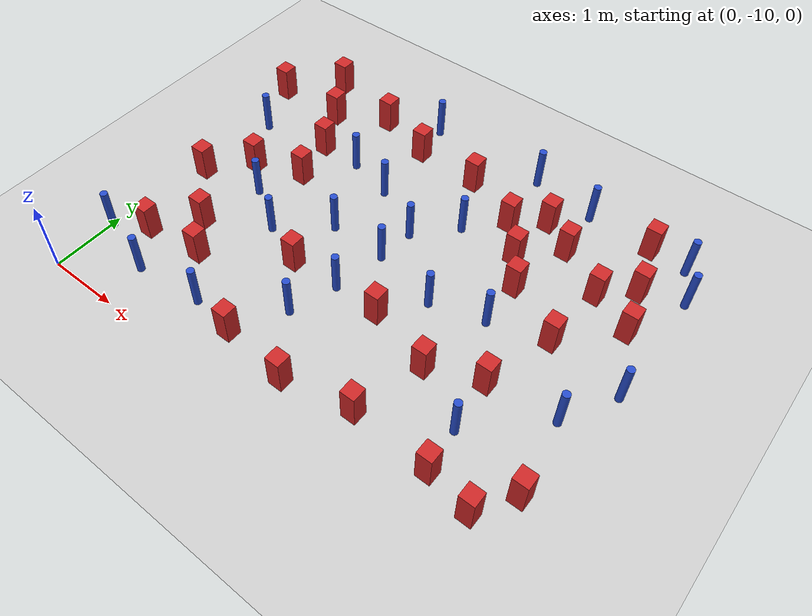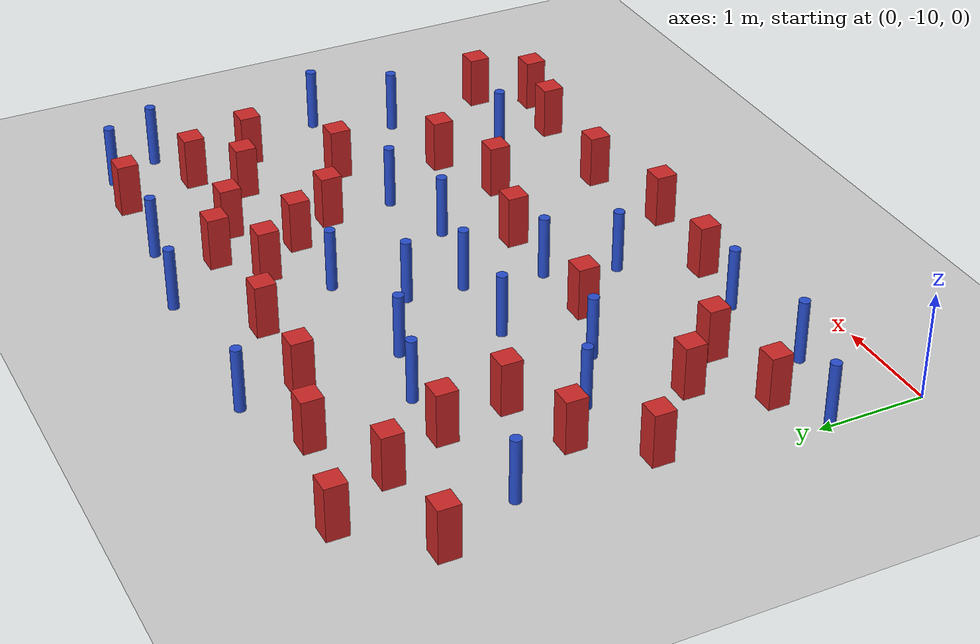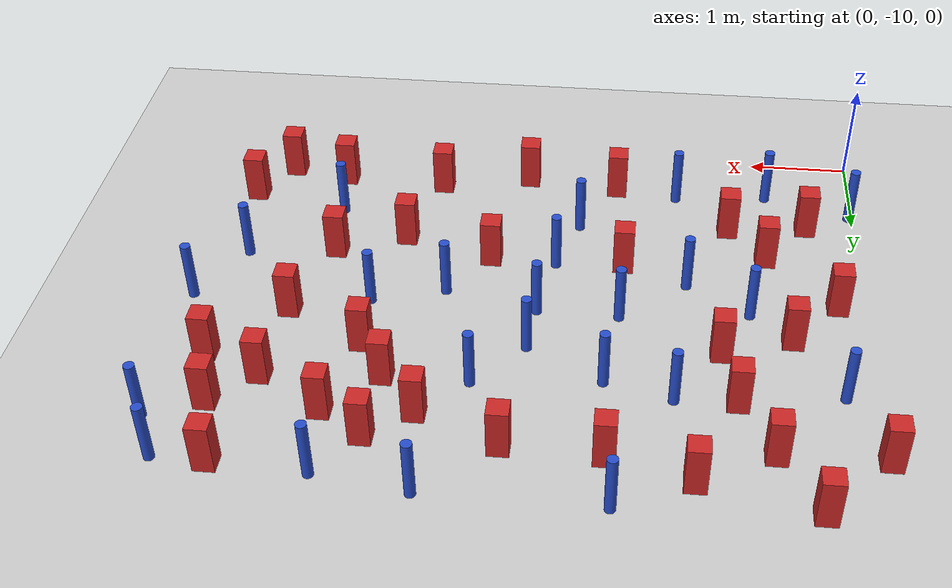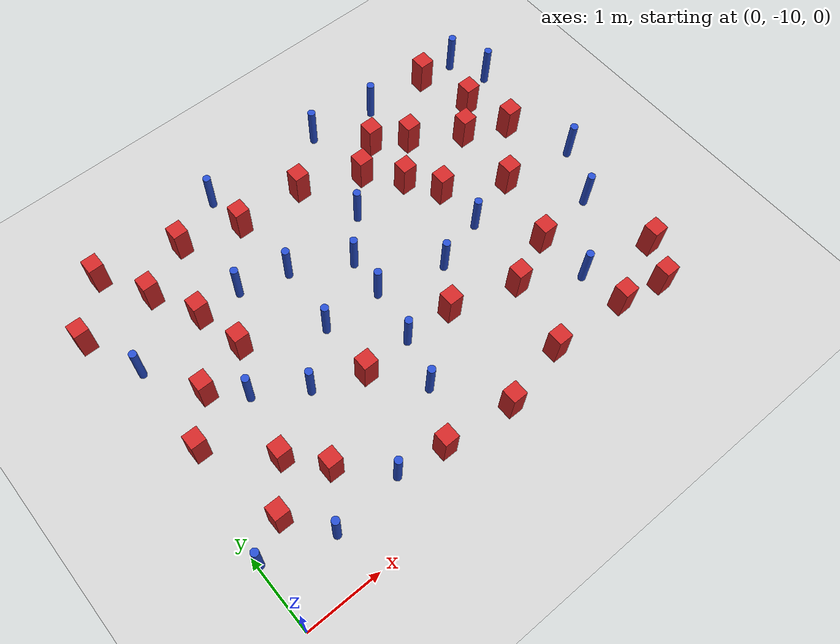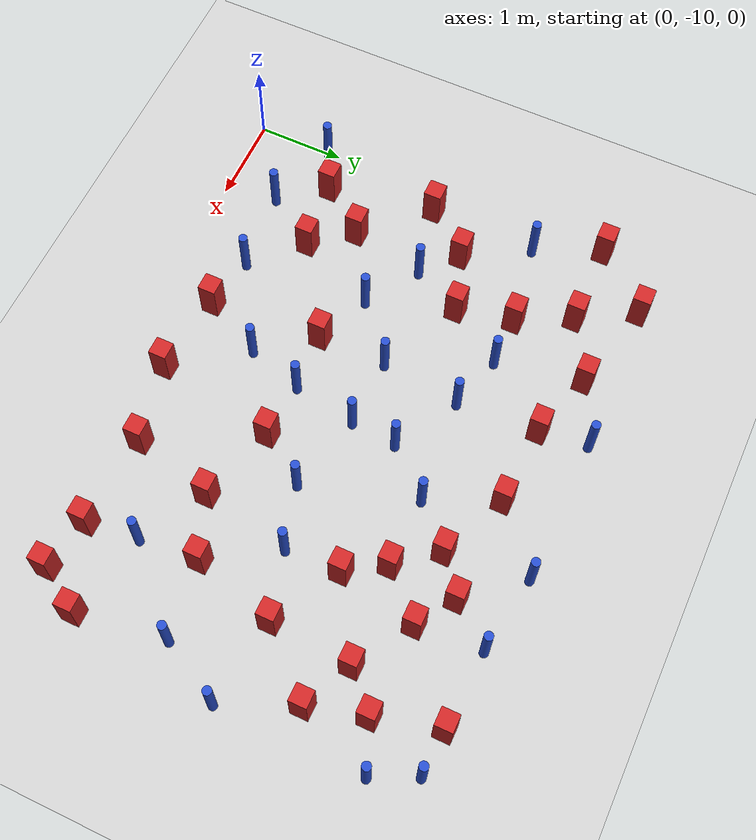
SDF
<sdf version="1.6">
 <world name="default">
  <model name="ground_plane">
   <static>1</static>
   <link name="link">
    <collision name="collision">
     <geometry><plane><normal>0 0 1</normal><size>100 100</size></plane></geometry>
     <surface><friction><ode><mu>100</mu><mu2>50</mu2></ode></friction></surface>
    </collision>
    <visual name="visual">
     <cast_shadows>0</cast_shadows>
     <geometry><plane><normal>0 0 1</normal><size>100 100</size></plane></geometry>
     <material>
      <ambient>1.0 1.0 1.0 1.0</ambient>
      <diffuse>0.8 0.8 0.8 1.0</diffuse>
      <specular>0.01 0.01 0.01 1.000000</specular>
     </material>
    </visual>
   </link>
  </model>
  <model name="square_post_obstacle6">
   <static>true</static>
   <pose>1.29093593183 -8.78116304104 1.91545236811e-07 -7.35059704564e-06 1.12565212e-07 2.39332434364e-05</pose>
   <link name="link">
    <pose>0 0 0.25 0 -0 0</pose>
    <inertial>
     <mass>100</mass>
     <inertia>
      <ixx>0.166667</ixx>
      <ixy>0</ixy>
      <ixz>0</ixz>
      <iyy>0.166667</iyy>
      <iyz>0</iyz>
      <izz>0.166667</izz>
     </inertia>
    </inertial>
    <collision name="collision"><geometry><box><size>.2 .2 .5</size></box></geometry></collision>
    <visual name="visual">
     <geometry><box><size>.2 .2 .5</size></box></geometry>
     <material>
      <script><name>Gazebo/Red</name><uri>file://media/materials/scripts/gazebo.material</uri></script>
     </material>
    </visual>
   </link>
  </model>
  <model name="pole_obstacle5">
   <static>true</static>
   <pose>4.72717917194 -7.37181326376 7.38925637345e-09 -8.47170692796e-08 1.24976764786e-08 -1.74513093032e-07</pose>
   <link name="link">
    <pose>0 0 0.3 0 -0 0</pose>
    <inertial>
     <mass>1</mass>
     <inertia><ixx>0.145833</ixx><ixy>0</ixy><ixz>0</ixz><iyy>0.145833</iyy><iyz>0</iyz><izz>0.125</izz></inertia>
    </inertial>
    <collision name="collision">
     <geometry><cylinder><radius>0.05</radius><length>.6</length></cylinder></geometry>
    </collision>
    <visual name="visual">
     <geometry><cylinder><radius>0.05</radius><length>.6</length></cylinder></geometry>
     <material>
      <script><name>Gazebo/Blue</name><uri>file://media/materials/scripts/gazebo.material</uri></script>
     </material>
    </visual>
   </link>
  </model>
  <model name="square_post_obstacle8">
   <static>true</static>
   <pose>4.5278132848 -8.37382198587 1.91545236811e-07 -7.35059704564e-06 1.12565212e-07 2.39332434364e-05</pose>
   <link name="link">
    <pose>0 0 0.25 0 -0 0</pose>
    <inertial>
     <mass>100</mass>
     <inertia>
      <ixx>0.166667</ixx>
      <ixy>0</ixy>
      <ixz>0</ixz>
      <iyy>0.166667</iyy>
      <iyz>0</iyz>
      <izz>0.166667</izz>
     </inertia>
    </inertial>
    <collision name="collision"><geometry><box><size>.2 .2 .5</size></box></geometry></collision>
    <visual name="visual">
     <geometry><box><size>.2 .2 .5</size></box></geometry>
     <material>
      <script><name>Gazebo/Red</name><uri>file://media/materials/scripts/gazebo.material</uri></script>
     </material>
    </visual>
   </link>
  </model>
  <model name="square_post_obstacle11">
   <static>true</static>
   <pose>4.90303084375 -5.84005324019 1.91545236811e-07 -7.35059704564e-06 1.12565212e-07 2.39332434364e-05</pose>
   <link name="link">
    <pose>0 0 0.25 0 -0 0</pose>
    <inertial>
     <mass>100</mass>
     <inertia>
      <ixx>0.166667</ixx>
      <ixy>0</ixy>
      <ixz>0</ixz>
      <iyy>0.166667</iyy>
      <iyz>0</iyz>
      <izz>0.166667</izz>
     </inertia>
    </inertial>
    <collision name="collision"><geometry><box><size>.2 .2 .5</size></box></geometry></collision>
    <visual name="visual">
     <geometry><box><size>.2 .2 .5</size></box></geometry>
     <material>
      <script><name>Gazebo/Red</name><uri>file://media/materials/scripts/gazebo.material</uri></script>
     </material>
    </visual>
   </link>
  </model>
  <model name="square_post_obstacle16">
   <static>true</static>
   <pose>3.64107070523 -8.11280772102 1.91545236811e-07 -7.35059704564e-06 1.12565212e-07 2.39332434364e-05</pose>
   <link name="link">
    <pose>0 0 0.25 0 -0 0</pose>
    <inertial>
     <mass>100</mass>
     <inertia>
      <ixx>0.166667</ixx>
      <ixy>0</ixy>
      <ixz>0</ixz>
      <iyy>0.166667</iyy>
      <iyz>0</iyz>
      <izz>0.166667</izz>
     </inertia>
    </inertial>
    <collision name="collision"><geometry><box><size>.2 .2 .5</size></box></geometry></collision>
    <visual name="visual">
     <geometry><box><size>.2 .2 .5</size></box></geometry>
     <material>
      <script><name>Gazebo/Red</name><uri>file://media/materials/scripts/gazebo.material</uri></script>
     </material>
    </visual>
   </link>
  </model>
  <model name="square_post_obstacle25">
   <static>true</static>
   <pose>5.53937418971 -6.23226143775 1.91545236811e-07 -7.35059704564e-06 1.12565212e-07 2.39332434364e-05</pose>
   <link name="link">
    <pose>0 0 0.25 0 -0 0</pose>
    <inertial>
     <mass>100</mass>
     <inertia>
      <ixx>0.166667</ixx>
      <ixy>0</ixy>
      <ixz>0</ixz>
      <iyy>0.166667</iyy>
      <iyz>0</iyz>
      <izz>0.166667</izz>
     </inertia>
    </inertial>
    <collision name="collision"><geometry><box><size>.2 .2 .5</size></box></geometry></collision>
    <visual name="visual">
     <geometry><box><size>.2 .2 .5</size></box></geometry>
     <material>
      <script><name>Gazebo/Red</name><uri>file://media/materials/scripts/gazebo.material</uri></script>
     </material>
    </visual>
   </link>
  </model>
  <model name="square_post_obstacle33">
   <static>true</static>
   <pose>2.44459764118 -9.39622125563 1.91545236811e-07 -7.35059704564e-06 1.12565212e-07 2.39332434364e-05</pose>
   <link name="link">
    <pose>0 0 0.25 0 -0 0</pose>
    <inertial>
     <mass>100</mass>
     <inertia>
      <ixx>0.166667</ixx>
      <ixy>0</ixy>
      <ixz>0</ixz>
      <iyy>0.166667</iyy>
      <iyz>0</iyz>
      <izz>0.166667</izz>
     </inertia>
    </inertial>
    <collision name="collision"><geometry><box><size>.2 .2 .5</size></box></geometry></collision>
    <visual name="visual">
     <geometry><box><size>.2 .2 .5</size></box></geometry>
     <material>
      <script><name>Gazebo/Red</name><uri>file://media/materials/scripts/gazebo.material</uri></script>
     </material>
    </visual>
   </link>
  </model>
  <model name="pole_obstacle39">
   <static>true</static>
   <pose>0.277764339624 -6.41978023083 7.38925637345e-09 -8.47170692799e-08 1.24976765101e-08 -1.74513093014e-07</pose>
   <link name="link">
    <pose>0 0 0.3 0 -0 0</pose>
    <inertial>
     <mass>1</mass>
     <inertia><ixx>0.145833</ixx><ixy>0</ixy><ixz>0</ixz><iyy>0.145833</iyy><iyz>0</iyz><izz>0.125</izz></inertia>
    </inertial>
    <collision name="collision">
     <geometry><cylinder><radius>0.05</radius><length>.6</length></cylinder></geometry>
    </collision>
    <visual name="visual">
     <geometry><cylinder><radius>0.05</radius><length>.6</length></cylinder></geometry>
     <material>
      <script><name>Gazebo/Blue</name><uri>file://media/materials/scripts/gazebo.material</uri></script>
     </material>
    </visual>
   </link>
  </model>
  <model name="pole_obstacle43">
   <static>true</static>
   <pose>3.12505444501 -7.35914126723 7.38925637345e-09 -8.47170692798e-08 1.24976765033e-08 -1.74513093019e-07</pose>
   <link name="link">
    <pose>0 0 0.3 0 -0 0</pose>
    <inertial>
     <mass>1</mass>
     <inertia><ixx>0.145833</ixx><ixy>0</ixy><ixz>0</ixz><iyy>0.145833</iyy><iyz>0</iyz><izz>0.125</izz></inertia>
    </inertial>
    <collision name="collision">
     <geometry><cylinder><radius>0.05</radius><length>.6</length></cylinder></geometry>
    </collision>
    <visual name="visual">
     <geometry><cylinder><radius>0.05</radius><length>.6</length></cylinder></geometry>
     <material>
      <script><name>Gazebo/Blue</name><uri>file://media/materials/scripts/gazebo.material</uri></script>
     </material>
    </visual>
   </link>
  </model>
  <model name="square_post_obstacle42">
   <static>true</static>
   <pose>6.22523209229 -8.99552981772 1.91545236811e-07 -7.35059704564e-06 1.12565212e-07 2.39332434364e-05</pose>
   <link name="link">
    <pose>0 0 0.25 0 -0 0</pose>
    <inertial>
     <mass>100</mass>
     <inertia>
      <ixx>0.166667</ixx>
      <ixy>0</ixy>
      <ixz>0</ixz>
      <iyy>0.166667</iyy>
      <iyz>0</iyz>
      <izz>0.166667</izz>
     </inertia>
    </inertial>
    <collision name="collision"><geometry><box><size>.2 .2 .5</size></box></geometry></collision>
    <visual name="visual">
     <geometry><box><size>.2 .2 .5</size></box></geometry>
     <material>
      <script><name>Gazebo/Red</name><uri>file://media/materials/scripts/gazebo.material</uri></script>
     </material>
    </visual>
   </link>
  </model>
  <model name="square_post_obstacle49">
   <static>true</static>
   <pose>3.37601077984 -9.49909298602 1.91545236811e-07 -7.35059704564e-06 1.12565212e-07 2.39332434364e-05</pose>
   <link name="link">
    <pose>0 0 0.25 0 -0 0</pose>
    <inertial>
     <mass>100</mass>
     <inertia>
      <ixx>0.166667</ixx>
      <ixy>0</ixy>
      <ixz>0</ixz>
      <iyy>0.166667</iyy>
      <iyz>0</iyz>
      <izz>0.166667</izz>
     </inertia>
    </inertial>
    <collision name="collision"><geometry><box><size>.2 .2 .5</size></box></geometry></collision>
    <visual name="visual">
     <geometry><box><size>.2 .2 .5</size></box></geometry>
     <material>
      <script><name>Gazebo/Red</name><uri>file://media/materials/scripts/gazebo.material</uri></script>
     </material>
    </visual>
   </link>
  </model>
  <model name="square_post_obstacle53">
   <static>true</static>
   <pose>5.92803754574 -5.86206520776 1.91545236811e-07 -7.35059704564e-06 1.12565212e-07 2.39332434364e-05</pose>
   <link name="link">
    <pose>0 0 0.25 0 -0 0</pose>
    <inertial>
     <mass>100</mass>
     <inertia>
      <ixx>0.166667</ixx>
      <ixy>0</ixy>
      <ixz>0</ixz>
      <iyy>0.166667</iyy>
      <iyz>0</iyz>
      <izz>0.166667</izz>
     </inertia>
    </inertial>
    <collision name="collision"><geometry><box><size>.2 .2 .5</size></box></geometry></collision>
    <visual name="visual">
     <geometry><box><size>.2 .2 .5</size></box></geometry>
     <material>
      <script><name>Gazebo/Red</name><uri>file://media/materials/scripts/gazebo.material</uri></script>
     </material>
    </visual>
   </link>
  </model>
  <model name="pole_obstacle51">
   <static>true</static>
   <pose>2.30842055501 -4.95734307303 7.38925637345e-09 -8.47170692798e-08 1.24976765033e-08 -1.74513093019e-07</pose>
   <link name="link">
    <pose>0 0 0.3 0 -0 0</pose>
    <inertial>
     <mass>1</mass>
     <inertia><ixx>0.145833</ixx><ixy>0</ixy><ixz>0</ixz><iyy>0.145833</iyy><iyz>0</iyz><izz>0.125</izz></inertia>
    </inertial>
    <collision name="collision">
     <geometry><cylinder><radius>0.05</radius><length>.6</length></cylinder></geometry>
    </collision>
    <visual name="visual">
     <geometry><cylinder><radius>0.05</radius><length>.6</length></cylinder></geometry>
     <material>
      <script><name>Gazebo/Blue</name><uri>file://media/materials/scripts/gazebo.material</uri></script>
     </material>
    </visual>
   </link>
  </model>
  <model name="square_post_obstacle57">
   <static>true</static>
   <pose>5.72634993968 -5.14717059021 1.91545236811e-07 -7.35059704564e-06 1.12565212e-07 2.39332434364e-05</pose>
   <link name="link">
    <pose>0 0 0.25 0 -0 0</pose>
    <inertial>
     <mass>100</mass>
     <inertia>
      <ixx>0.166667</ixx>
      <ixy>0</ixy>
      <ixz>0</ixz>
      <iyy>0.166667</iyy>
      <iyz>0</iyz>
      <izz>0.166667</izz>
     </inertia>
    </inertial>
    <collision name="collision"><geometry><box><size>.2 .2 .5</size></box></geometry></collision>
    <visual name="visual">
     <geometry><box><size>.2 .2 .5</size></box></geometry>
     <material>
      <script><name>Gazebo/Red</name><uri>file://media/materials/scripts/gazebo.material</uri></script>
     </material>
    </visual>
   </link>
  </model>
  <model name="square_post_obstacle63">
   <static>true</static>
   <pose>4.70436460898 -6.74175493405 1.91545236811e-07 -7.35059704564e-06 1.12565212e-07 2.39332434364e-05</pose>
   <link name="link">
    <pose>0 0 0.25 0 -0 0</pose>
    <inertial>
     <mass>100</mass>
     <inertia>
      <ixx>0.166667</ixx>
      <ixy>0</ixy>
      <ixz>0</ixz>
      <iyy>0.166667</iyy>
      <iyz>0</iyz>
      <izz>0.166667</izz>
     </inertia>
    </inertial>
    <collision name="collision"><geometry><box><size>.2 .2 .5</size></box></geometry></collision>
    <visual name="visual">
     <geometry><box><size>.2 .2 .5</size></box></geometry>
     <material>
      <script><name>Gazebo/Red</name><uri>file://media/materials/scripts/gazebo.material</uri></script>
     </material>
    </visual>
   </link>
  </model>
  <model name="pole_obstacle62">
   <static>true</static>
   <pose>3.95901729467 -4.96876958678 7.38925637345e-09 -8.47170692798e-08 1.24976764915e-08 -1.74513093026e-07</pose>
   <link name="link">
    <pose>0 0 0.3 0 -0 0</pose>
    <inertial>
     <mass>1</mass>
     <inertia><ixx>0.145833</ixx><ixy>0</ixy><ixz>0</ixz><iyy>0.145833</iyy><iyz>0</iyz><izz>0.125</izz></inertia>
    </inertial>
    <collision name="collision">
     <geometry><cylinder><radius>0.05</radius><length>.6</length></cylinder></geometry>
    </collision>
    <visual name="visual">
     <geometry><cylinder><radius>0.05</radius><length>.6</length></cylinder></geometry>
     <material>
      <script><name>Gazebo/Blue</name><uri>file://media/materials/scripts/gazebo.material</uri></script>
     </material>
    </visual>
   </link>
  </model>
  <model name="square_post_obstacle74">
   <static>true</static>
   <pose>4.43430197414 -6.31797558645 1.91545236811e-07 -7.35059704564e-06 1.12565212e-07 2.39332434364e-05</pose>
   <link name="link">
    <pose>0 0 0.25 0 -0 0</pose>
    <inertial>
     <mass>100</mass>
     <inertia>
      <ixx>0.166667</ixx>
      <ixy>0</ixy>
      <ixz>0</ixz>
      <iyy>0.166667</iyy>
      <iyz>0</iyz>
      <izz>0.166667</izz>
     </inertia>
    </inertial>
    <collision name="collision"><geometry><box><size>.2 .2 .5</size></box></geometry></collision>
    <visual name="visual">
     <geometry><box><size>.2 .2 .5</size></box></geometry>
     <material>
      <script><name>Gazebo/Red</name><uri>file://media/materials/scripts/gazebo.material</uri></script>
     </material>
    </visual>
   </link>
  </model>
  <model name="square_post_obstacle76">
   <static>true</static>
   <pose>5.20046629692 -8.10420587631 1.91545236811e-07 -7.35059704564e-06 1.12565212e-07 2.39332434364e-05</pose>
   <link name="link">
    <pose>0 0 0.25 0 -0 0</pose>
    <inertial>
     <mass>100</mass>
     <inertia>
      <ixx>0.166667</ixx>
      <ixy>0</ixy>
      <ixz>0</ixz>
      <iyy>0.166667</iyy>
      <iyz>0</iyz>
      <izz>0.166667</izz>
     </inertia>
    </inertial>
    <collision name="collision"><geometry><box><size>.2 .2 .5</size></box></geometry></collision>
    <visual name="visual">
     <geometry><box><size>.2 .2 .5</size></box></geometry>
     <material>
      <script><name>Gazebo/Red</name><uri>file://media/materials/scripts/gazebo.material</uri></script>
     </material>
    </visual>
   </link>
  </model>
  <model name="square_post_obstacle79">
   <static>true</static>
   <pose>-0.0343899249635 -5.67383129627 1.91545236811e-07 -7.35059704564e-06 1.12565212e-07 2.39332434364e-05</pose>
   <link name="link">
    <pose>0 0 0.25 0 -0 0</pose>
    <inertial>
     <mass>100</mass>
     <inertia>
      <ixx>0.166667</ixx>
      <ixy>0</ixy>
      <ixz>0</ixz>
      <iyy>0.166667</iyy>
      <iyz>0</iyz>
      <izz>0.166667</izz>
     </inertia>
    </inertial>
    <collision name="collision"><geometry><box><size>.2 .2 .5</size></box></geometry></collision>
    <visual name="visual">
     <geometry><box><size>.2 .2 .5</size></box></geometry>
     <material>
      <script><name>Gazebo/Red</name><uri>file://media/materials/scripts/gazebo.material</uri></script>
     </material>
    </visual>
   </link>
  </model>
  <model name="pole_obstacle81">
   <static>true</static>
   <pose>2.33633916471 -7.33884039894 7.38925637345e-09 -8.47170692798e-08 1.24976765033e-08 -1.74513093019e-07</pose>
   <link name="link">
    <pose>0 0 0.3 0 -0 0</pose>
    <inertial>
     <mass>1</mass>
     <inertia><ixx>0.145833</ixx><ixy>0</ixy><ixz>0</ixz><iyy>0.145833</iyy><iyz>0</iyz><izz>0.125</izz></inertia>
    </inertial>
    <collision name="collision">
     <geometry><cylinder><radius>0.05</radius><length>.6</length></cylinder></geometry>
    </collision>
    <visual name="visual">
     <geometry><cylinder><radius>0.05</radius><length>.6</length></cylinder></geometry>
     <material>
      <script><name>Gazebo/Blue</name><uri>file://media/materials/scripts/gazebo.material</uri></script>
     </material>
    </visual>
   </link>
  </model>
  <model name="pole_obstacle83">
   <static>true</static>
   <pose>6.07932099151 -7.99649680403 7.38925637345e-09 -8.47170692796e-08 1.24976764752e-08 -1.74513093035e-07</pose>
   <link name="link">
    <pose>0 0 0.3 0 -0 0</pose>
    <inertial>
     <mass>1</mass>
     <inertia><ixx>0.145833</ixx><ixy>0</ixy><ixz>0</ixz><iyy>0.145833</iyy><iyz>0</iyz><izz>0.125</izz></inertia>
    </inertial>
    <collision name="collision">
     <geometry><cylinder><radius>0.05</radius><length>.6</length></cylinder></geometry>
    </collision>
    <visual name="visual">
     <geometry><cylinder><radius>0.05</radius><length>.6</length></cylinder></geometry>
     <material>
      <script><name>Gazebo/Blue</name><uri>file://media/materials/scripts/gazebo.material</uri></script>
     </material>
    </visual>
   </link>
  </model>
  <model name="square_post_obstacle81">
   <static>true</static>
   <pose>6.10173566876 -6.49197452553 1.91545236811e-07 -7.35059704564e-06 1.12565212e-07 2.39332434364e-05</pose>
   <link name="link">
    <pose>0 0 0.25 0 -0 0</pose>
    <inertial>
     <mass>100</mass>
     <inertia>
      <ixx>0.166667</ixx>
      <ixy>0</ixy>
      <ixz>0</ixz>
      <iyy>0.166667</iyy>
      <iyz>0</iyz>
      <izz>0.166667</izz>
     </inertia>
    </inertial>
    <collision name="collision"><geometry><box><size>.2 .2 .5</size></box></geometry></collision>
    <visual name="visual">
     <geometry><box><size>.2 .2 .5</size></box></geometry>
     <material>
      <script><name>Gazebo/Red</name><uri>file://media/materials/scripts/gazebo.material</uri></script>
     </material>
    </visual>
   </link>
  </model>
  <model name="pole_obstacle92">
   <static>true</static>
   <pose>3.17177041858 -6.83420024226 7.38925637345e-09 -8.47170692798e-08 1.24976765033e-08 -1.74513093019e-07</pose>
   <link name="link">
    <pose>0 0 0.3 0 -0 0</pose>
    <inertial>
     <mass>1</mass>
     <inertia><ixx>0.145833</ixx><ixy>0</ixy><ixz>0</ixz><iyy>0.145833</iyy><iyz>0</iyz><izz>0.125</izz></inertia>
    </inertial>
    <collision name="collision">
     <geometry><cylinder><radius>0.05</radius><length>.6</length></cylinder></geometry>
    </collision>
    <visual name="visual">
     <geometry><cylinder><radius>0.05</radius><length>.6</length></cylinder></geometry>
     <material>
      <script><name>Gazebo/Blue</name><uri>file://media/materials/scripts/gazebo.material</uri></script>
     </material>
    </visual>
   </link>
  </model>
  <model name="square_post_obstacle83">
   <static>true</static>
   <pose>5.33094492281 -9.3620128815 1.91545236811e-07 -7.35059704564e-06 1.12565212e-07 2.39332434364e-05</pose>
   <link name="link">
    <pose>0 0 0.25 0 -0 0</pose>
    <inertial>
     <mass>100</mass>
     <inertia>
      <ixx>0.166667</ixx>
      <ixy>0</ixy>
      <ixz>0</ixz>
      <iyy>0.166667</iyy>
      <iyz>0</iyz>
      <izz>0.166667</izz>
     </inertia>
    </inertial>
    <collision name="collision"><geometry><box><size>.2 .2 .5</size></box></geometry></collision>
    <visual name="visual">
     <geometry><box><size>.2 .2 .5</size></box></geometry>
     <material>
      <script><name>Gazebo/Red</name><uri>file://media/materials/scripts/gazebo.material</uri></script>
     </material>
    </visual>
   </link>
  </model>
  <model name="square_post_obstacle85">
   <static>true</static>
   <pose>4.28168599286 -9.30684547656 1.91545236811e-07 -7.35059704564e-06 1.12565212e-07 2.39332434364e-05</pose>
   <link name="link">
    <pose>0 0 0.25 0 -0 0</pose>
    <inertial>
     <mass>100</mass>
     <inertia>
      <ixx>0.166667</ixx>
      <ixy>0</ixy>
      <ixz>0</ixz>
      <iyy>0.166667</iyy>
      <iyz>0</iyz>
      <izz>0.166667</izz>
     </inertia>
    </inertial>
    <collision name="collision"><geometry><box><size>.2 .2 .5</size></box></geometry></collision>
    <visual name="visual">
     <geometry><box><size>.2 .2 .5</size></box></geometry>
     <material>
      <script><name>Gazebo/Red</name><uri>file://media/materials/scripts/gazebo.material</uri></script>
     </material>
    </visual>
   </link>
  </model>
  <model name="square_post_obstacle88">
   <static>true</static>
   <pose>0.924443937239 -8.33295180404 1.91545236811e-07 -7.35059704564e-06 1.12565212e-07 2.39332434364e-05</pose>
   <link name="link">
    <pose>0 0 0.25 0 -0 0</pose>
    <inertial>
     <mass>100</mass>
     <inertia>
      <ixx>0.166667</ixx>
      <ixy>0</ixy>
      <ixz>0</ixz>
      <iyy>0.166667</iyy>
      <iyz>0</iyz>
      <izz>0.166667</izz>
     </inertia>
    </inertial>
    <collision name="collision"><geometry><box><size>.2 .2 .5</size></box></geometry></collision>
    <visual name="visual">
     <geometry><box><size>.2 .2 .5</size></box></geometry>
     <material>
      <script><name>Gazebo/Red</name><uri>file://media/materials/scripts/gazebo.material</uri></script>
     </material>
    </visual>
   </link>
  </model>
  <model name="pole_obstacle104">
   <static>true</static>
   <pose>1.70221410308 -7.86417918358 7.38925637345e-09 -8.47170692799e-08 1.24976765033e-08 -1.74513093018e-07</pose>
   <link name="link">
    <pose>0 0 0.3 0 -0 0</pose>
    <inertial>
     <mass>1</mass>
     <inertia><ixx>0.145833</ixx><ixy>0</ixy><ixz>0</ixz><iyy>0.145833</iyy><iyz>0</iyz><izz>0.125</izz></inertia>
    </inertial>
    <collision name="collision">
     <geometry><cylinder><radius>0.05</radius><length>.6</length></cylinder></geometry>
    </collision>
    <visual name="visual">
     <geometry><cylinder><radius>0.05</radius><length>.6</length></cylinder></geometry>
     <material>
      <script><name>Gazebo/Blue</name><uri>file://media/materials/scripts/gazebo.material</uri></script>
     </material>
    </visual>
   </link>
  </model>
  <model name="square_post_obstacle93">
   <static>true</static>
   <pose>0.71132503329 -7.12866713459 1.91545236811e-07 -7.35059704564e-06 1.12565212e-07 2.39332434364e-05</pose>
   <link name="link">
    <pose>0 0 0.25 0 -0 0</pose>
    <inertial>
     <mass>100</mass>
     <inertia>
      <ixx>0.166667</ixx>
      <ixy>0</ixy>
      <ixz>0</ixz>
      <iyy>0.166667</iyy>
      <iyz>0</iyz>
      <izz>0.166667</izz>
     </inertia>
    </inertial>
    <collision name="collision"><geometry><box><size>.2 .2 .5</size></box></geometry></collision>
    <visual name="visual">
     <geometry><box><size>.2 .2 .5</size></box></geometry>
     <material>
      <script><name>Gazebo/Red</name><uri>file://media/materials/scripts/gazebo.material</uri></script>
     </material>
    </visual>
   </link>
  </model>
  <model name="pole_obstacle107">
   <static>true</static>
   <pose>2.79690165269 -8.72183148405 7.38925637345e-09 -8.47170692793e-08 1.24976764408e-08 -1.74513093041e-07</pose>
   <link name="link">
    <pose>0 0 0.3 0 -0 0</pose>
    <inertial>
     <mass>1</mass>
     <inertia><ixx>0.145833</ixx><ixy>0</ixy><ixz>0</ixz><iyy>0.145833</iyy><iyz>0</iyz><izz>0.125</izz></inertia>
    </inertial>
    <collision name="collision">
     <geometry><cylinder><radius>0.05</radius><length>.6</length></cylinder></geometry>
    </collision>
    <visual name="visual">
     <geometry><cylinder><radius>0.05</radius><length>.6</length></cylinder></geometry>
     <material>
      <script><name>Gazebo/Blue</name><uri>file://media/materials/scripts/gazebo.material</uri></script>
     </material>
    </visual>
   </link>
  </model>
  <model name="pole_obstacle118">
   <static>true</static>
   <pose>2.44098932791 -6.43273947386 7.38925637345e-09 -8.47170692798e-08 1.24976765033e-08 -1.74513093019e-07</pose>
   <link name="link">
    <pose>0 0 0.3 0 -0 0</pose>
    <inertial>
     <mass>1</mass>
     <inertia><ixx>0.145833</ixx><ixy>0</ixy><ixz>0</ixz><iyy>0.145833</iyy><iyz>0</iyz><izz>0.125</izz></inertia>
    </inertial>
    <collision name="collision">
     <geometry><cylinder><radius>0.05</radius><length>.6</length></cylinder></geometry>
    </collision>
    <visual name="visual">
     <geometry><cylinder><radius>0.05</radius><length>.6</length></cylinder></geometry>
     <material>
      <script><name>Gazebo/Blue</name><uri>file://media/materials/scripts/gazebo.material</uri></script>
     </material>
    </visual>
   </link>
  </model>
  <model name="square_post_obstacle105">
   <static>true</static>
   <pose>0.558055989893 -5.03358355975 1.91545236811e-07 -7.35059704564e-06 1.12565212e-07 2.39332434364e-05</pose>
   <link name="link">
    <pose>0 0 0.25 0 -0 0</pose>
    <inertial>
     <mass>100</mass>
     <inertia>
      <ixx>0.166667</ixx>
      <ixy>0</ixy>
      <ixz>0</ixz>
      <iyy>0.166667</iyy>
      <iyz>0</iyz>
      <izz>0.166667</izz>
     </inertia>
    </inertial>
    <collision name="collision"><geometry><box><size>.2 .2 .5</size></box></geometry></collision>
    <visual name="visual">
     <geometry><box><size>.2 .2 .5</size></box></geometry>
     <material>
      <script><name>Gazebo/Red</name><uri>file://media/materials/scripts/gazebo.material</uri></script>
     </material>
    </visual>
   </link>
  </model>
  <model name="square_post_obstacle109">
   <static>true</static>
   <pose>1.2386545917 -6.26127998612 1.91545236811e-07 -7.35059704564e-06 1.12565212e-07 2.39332434364e-05</pose>
   <link name="link">
    <pose>0 0 0.25 0 -0 0</pose>
    <inertial>
     <mass>100</mass>
     <inertia>
      <ixx>0.166667</ixx>
      <ixy>0</ixy>
      <ixz>0</ixz>
      <iyy>0.166667</iyy>
      <iyz>0</iyz>
      <izz>0.166667</izz>
     </inertia>
    </inertial>
    <collision name="collision"><geometry><box><size>.2 .2 .5</size></box></geometry></collision>
    <visual name="visual">
     <geometry><box><size>.2 .2 .5</size></box></geometry>
     <material>
      <script><name>Gazebo/Red</name><uri>file://media/materials/scripts/gazebo.material</uri></script>
     </material>
    </visual>
   </link>
  </model>
  <model name="pole_obstacle122">
   <static>true</static>
   <pose>6.45744853904 -5.64845747156 7.38925637345e-09 -8.47170692796e-08 1.24976764786e-08 -1.74513093032e-07</pose>
   <link name="link">
    <pose>0 0 0.3 0 -0 0</pose>
    <inertial>
     <mass>1</mass>
     <inertia><ixx>0.145833</ixx><ixy>0</ixy><ixz>0</ixz><iyy>0.145833</iyy><iyz>0</iyz><izz>0.125</izz></inertia>
    </inertial>
    <collision name="collision">
     <geometry><cylinder><radius>0.05</radius><length>.6</length></cylinder></geometry>
    </collision>
    <visual name="visual">
     <geometry><cylinder><radius>0.05</radius><length>.6</length></cylinder></geometry>
     <material>
      <script><name>Gazebo/Blue</name><uri>file://media/materials/scripts/gazebo.material</uri></script>
     </material>
    </visual>
   </link>
  </model>
  <model name="square_post_obstacle115">
   <static>true</static>
   <pose>1.37938482298 -6.89959389368 1.91545236811e-07 -7.35059704564e-06 1.12565212e-07 2.39332434364e-05</pose>
   <link name="link">
    <pose>0 0 0.25 0 -0 0</pose>
    <inertial>
     <mass>100</mass>
     <inertia>
      <ixx>0.166667</ixx>
      <ixy>0</ixy>
      <ixz>0</ixz>
      <iyy>0.166667</iyy>
      <iyz>0</iyz>
      <izz>0.166667</izz>
     </inertia>
    </inertial>
    <collision name="collision"><geometry><box><size>.2 .2 .5</size></box></geometry></collision>
    <visual name="visual">
     <geometry><box><size>.2 .2 .5</size></box></geometry>
     <material>
      <script><name>Gazebo/Red</name><uri>file://media/materials/scripts/gazebo.material</uri></script>
     </material>
    </visual>
   </link>
  </model>
  <model name="pole_obstacle138">
   <static>true</static>
   <pose>0.886359378015 -9.39254440015 7.38925637345e-09 -8.47170692797e-08 1.249767648e-08 -1.74513093032e-07</pose>
   <link name="link">
    <pose>0 0 0.3 0 -0 0</pose>
    <inertial>
     <mass>1</mass>
     <inertia><ixx>0.145833</ixx><ixy>0</ixy><ixz>0</ixz><iyy>0.145833</iyy><iyz>0</iyz><izz>0.125</izz></inertia>
    </inertial>
    <collision name="collision">
     <geometry><cylinder><radius>0.05</radius><length>.6</length></cylinder></geometry>
    </collision>
    <visual name="visual">
     <geometry><cylinder><radius>0.05</radius><length>.6</length></cylinder></geometry>
     <material>
      <script><name>Gazebo/Blue</name><uri>file://media/materials/scripts/gazebo.material</uri></script>
     </material>
    </visual>
   </link>
  </model>
  <model name="pole_obstacle139">
   <static>true</static>
   <pose>1.80543573195 -6.25840407394 7.38925637345e-09 -8.47170692799e-08 1.24976765033e-08 -1.74513093018e-07</pose>
   <link name="link">
    <pose>0 0 0.3 0 -0 0</pose>
    <inertial>
     <mass>1</mass>
     <inertia><ixx>0.145833</ixx><ixy>0</ixy><ixz>0</ixz><iyy>0.145833</iyy><iyz>0</iyz><izz>0.125</izz></inertia>
    </inertial>
    <collision name="collision">
     <geometry><cylinder><radius>0.05</radius><length>.6</length></cylinder></geometry>
    </collision>
    <visual name="visual">
     <geometry><cylinder><radius>0.05</radius><length>.6</length></cylinder></geometry>
     <material>
      <script><name>Gazebo/Blue</name><uri>file://media/materials/scripts/gazebo.material</uri></script>
     </material>
    </visual>
   </link>
  </model>
  <model name="square_post_obstacle124">
   <static>true</static>
   <pose>4.48012485753 -5.56483992767 1.91545236811e-07 -7.35059704564e-06 1.12565212e-07 2.39332434364e-05</pose>
   <link name="link">
    <pose>0 0 0.25 0 -0 0</pose>
    <inertial>
     <mass>100</mass>
     <inertia>
      <ixx>0.166667</ixx>
      <ixy>0</ixy>
      <ixz>0</ixz>
      <iyy>0.166667</iyy>
      <iyz>0</iyz>
      <izz>0.166667</izz>
     </inertia>
    </inertial>
    <collision name="collision"><geometry><box><size>.2 .2 .5</size></box></geometry></collision>
    <visual name="visual">
     <geometry><box><size>.2 .2 .5</size></box></geometry>
     <material>
      <script><name>Gazebo/Red</name><uri>file://media/materials/scripts/gazebo.material</uri></script>
     </material>
    </visual>
   </link>
  </model>
  <model name="square_post_obstacle132">
   <static>true</static>
   <pose>4.06965100638 -5.88094978158 1.91545236811e-07 -7.35059704564e-06 1.12565212e-07 2.39332434364e-05</pose>
   <link name="link">
    <pose>0 0 0.25 0 -0 0</pose>
    <inertial>
     <mass>100</mass>
     <inertia>
      <ixx>0.166667</ixx>
      <ixy>0</ixy>
      <ixz>0</ixz>
      <iyy>0.166667</iyy>
      <iyz>0</iyz>
      <izz>0.166667</izz>
     </inertia>
    </inertial>
    <collision name="collision"><geometry><box><size>.2 .2 .5</size></box></geometry></collision>
    <visual name="visual">
     <geometry><box><size>.2 .2 .5</size></box></geometry>
     <material>
      <script><name>Gazebo/Red</name><uri>file://media/materials/scripts/gazebo.material</uri></script>
     </material>
    </visual>
   </link>
  </model>
  <model name="pole_obstacle145">
   <static>true</static>
   <pose>6.23288727515 -5.17046267829 7.38925637345e-09 -8.47170692796e-08 1.24976764786e-08 -1.74513093032e-07</pose>
   <link name="link">
    <pose>0 0 0.3 0 -0 0</pose>
    <inertial>
     <mass>1</mass>
     <inertia><ixx>0.145833</ixx><ixy>0</ixy><ixz>0</ixz><iyy>0.145833</iyy><iyz>0</iyz><izz>0.125</izz></inertia>
    </inertial>
    <collision name="collision">
     <geometry><cylinder><radius>0.05</radius><length>.6</length></cylinder></geometry>
    </collision>
    <visual name="visual">
     <geometry><cylinder><radius>0.05</radius><length>.6</length></cylinder></geometry>
     <material>
      <script><name>Gazebo/Blue</name><uri>file://media/materials/scripts/gazebo.material</uri></script>
     </material>
    </visual>
   </link>
  </model>
  <model name="square_post_obstacle139">
   <static>true</static>
   <pose>0.929245263704 -5.65640414768 1.91545236811e-07 -7.35059704564e-06 1.12565212e-07 2.39332434364e-05</pose>
   <link name="link">
    <pose>0 0 0.25 0 -0 0</pose>
    <inertial>
     <mass>100</mass>
     <inertia>
      <ixx>0.166667</ixx>
      <ixy>0</ixy>
      <ixz>0</ixz>
      <iyy>0.166667</iyy>
      <iyz>0</iyz>
      <izz>0.166667</izz>
     </inertia>
    </inertial>
    <collision name="collision"><geometry><box><size>.2 .2 .5</size></box></geometry></collision>
    <visual name="visual">
     <geometry><box><size>.2 .2 .5</size></box></geometry>
     <material>
      <script><name>Gazebo/Red</name><uri>file://media/materials/scripts/gazebo.material</uri></script>
     </material>
    </visual>
   </link>
  </model>
  <model name="square_post_obstacle141">
   <static>true</static>
   <pose>3.28853317604 -5.54690840278 1.91545236811e-07 -7.35059704564e-06 1.12565212e-07 2.39332434364e-05</pose>
   <link name="link">
    <pose>0 0 0.25 0 -0 0</pose>
    <inertial>
     <mass>100</mass>
     <inertia>
      <ixx>0.166667</ixx>
      <ixy>0</ixy>
      <ixz>0</ixz>
      <iyy>0.166667</iyy>
      <iyz>0</iyz>
      <izz>0.166667</izz>
     </inertia>
    </inertial>
    <collision name="collision"><geometry><box><size>.2 .2 .5</size></box></geometry></collision>
    <visual name="visual">
     <geometry><box><size>.2 .2 .5</size></box></geometry>
     <material>
      <script><name>Gazebo/Red</name><uri>file://media/materials/scripts/gazebo.material</uri></script>
     </material>
    </visual>
   </link>
  </model>
  <model name="square_post_obstacle143">
   <static>true</static>
   <pose>5.47197003319 -7.15842595611 1.91545236811e-07 -7.35059704564e-06 1.12565212e-07 2.39332434364e-05</pose>
   <link name="link">
    <pose>0 0 0.25 0 -0 0</pose>
    <inertial>
     <mass>100</mass>
     <inertia>
      <ixx>0.166667</ixx>
      <ixy>0</ixy>
      <ixz>0</ixz>
      <iyy>0.166667</iyy>
      <iyz>0</iyz>
      <izz>0.166667</izz>
     </inertia>
    </inertial>
    <collision name="collision"><geometry><box><size>.2 .2 .5</size></box></geometry></collision>
    <visual name="visual">
     <geometry><box><size>.2 .2 .5</size></box></geometry>
     <material>
      <script><name>Gazebo/Red</name><uri>file://media/materials/scripts/gazebo.material</uri></script>
     </material>
    </visual>
   </link>
  </model>
  <model name="pole_obstacle159">
   <static>true</static>
   <pose>1.09685828606 -7.47612217469 7.38925637345e-09 -8.47170692799e-08 1.24976765033e-08 -1.74513093018e-07</pose>
   <link name="link">
    <pose>0 0 0.3 0 -0 0</pose>
    <inertial>
     <mass>1</mass>
     <inertia><ixx>0.145833</ixx><ixy>0</ixy><ixz>0</ixz><iyy>0.145833</iyy><iyz>0</iyz><izz>0.125</izz></inertia>
    </inertial>
    <collision name="collision">
     <geometry><cylinder><radius>0.05</radius><length>.6</length></cylinder></geometry>
    </collision>
    <visual name="visual">
     <geometry><cylinder><radius>0.05</radius><length>.6</length></cylinder></geometry>
     <material>
      <script><name>Gazebo/Blue</name><uri>file://media/materials/scripts/gazebo.material</uri></script>
     </material>
    </visual>
   </link>
  </model>
  <model name="square_post_obstacle158">
   <static>true</static>
   <pose>0.259117137732 -7.65534488248 1.91545236811e-07 -7.35059704564e-06 1.12565212e-07 2.39332434364e-05</pose>
   <link name="link">
    <pose>0 0 0.25 0 -0 0</pose>
    <inertial>
     <mass>100</mass>
     <inertia>
      <ixx>0.166667</ixx>
      <ixy>0</ixy>
      <ixz>0</ixz>
      <iyy>0.166667</iyy>
      <iyz>0</iyz>
      <izz>0.166667</izz>
     </inertia>
    </inertial>
    <collision name="collision"><geometry><box><size>.2 .2 .5</size></box></geometry></collision>
    <visual name="visual">
     <geometry><box><size>.2 .2 .5</size></box></geometry>
     <material>
      <script><name>Gazebo/Red</name><uri>file://media/materials/scripts/gazebo.material</uri></script>
     </material>
    </visual>
   </link>
  </model>
  <model name="pole_obstacle167">
   <static>true</static>
   <pose>6.4579082606 -7.30429831151 7.38925637345e-09 -8.47170692796e-08 1.24976764786e-08 -1.74513093032e-07</pose>
   <link name="link">
    <pose>0 0 0.3 0 -0 0</pose>
    <inertial>
     <mass>1</mass>
     <inertia><ixx>0.145833</ixx><ixy>0</ixy><ixz>0</ixz><iyy>0.145833</iyy><iyz>0</iyz><izz>0.125</izz></inertia>
    </inertial>
    <collision name="collision">
     <geometry><cylinder><radius>0.05</radius><length>.6</length></cylinder></geometry>
    </collision>
    <visual name="visual">
     <geometry><cylinder><radius>0.05</radius><length>.6</length></cylinder></geometry>
     <material>
      <script><name>Gazebo/Blue</name><uri>file://media/materials/scripts/gazebo.material</uri></script>
     </material>
    </visual>
   </link>
  </model>
  <model name="pole_obstacle176">
   <static>true</static>
   <pose>0.0348952304551 -9.12259490404 7.38925637345e-09 -8.47170692796e-08 1.24976764747e-08 -1.74513093035e-07</pose>
   <link name="link">
    <pose>0 0 0.3 0 -0 0</pose>
    <inertial>
     <mass>1</mass>
     <inertia><ixx>0.145833</ixx><ixy>0</ixy><ixz>0</ixz><iyy>0.145833</iyy><iyz>0</iyz><izz>0.125</izz></inertia>
    </inertial>
    <collision name="collision">
     <geometry><cylinder><radius>0.05</radius><length>.6</length></cylinder></geometry>
    </collision>
    <visual name="visual">
     <geometry><cylinder><radius>0.05</radius><length>.6</length></cylinder></geometry>
     <material>
      <script><name>Gazebo/Blue</name><uri>file://media/materials/scripts/gazebo.material</uri></script>
     </material>
    </visual>
   </link>
  </model>
  <model name="square_post_obstacle167">
   <static>true</static>
   <pose>0.497604608297 -8.87575595252 1.91545236811e-07 -7.35059704564e-06 1.12565212e-07 2.39332434364e-05</pose>
   <link name="link">
    <pose>0 0 0.25 0 -0 0</pose>
    <inertial>
     <mass>100</mass>
     <inertia>
      <ixx>0.166667</ixx>
      <ixy>0</ixy>
      <ixz>0</ixz>
      <iyy>0.166667</iyy>
      <iyz>0</iyz>
      <izz>0.166667</izz>
     </inertia>
    </inertial>
    <collision name="collision"><geometry><box><size>.2 .2 .5</size></box></geometry></collision>
    <visual name="visual">
     <geometry><box><size>.2 .2 .5</size></box></geometry>
     <material>
      <script><name>Gazebo/Red</name><uri>file://media/materials/scripts/gazebo.material</uri></script>
     </material>
    </visual>
   </link>
  </model>
  <model name="pole_obstacle181">
   <static>true</static>
   <pose>5.26480328443 -8.78500565906 7.38925637345e-09 -8.471706928e-08 1.24976765081e-08 -1.74513093015e-07</pose>
   <link name="link">
    <pose>0 0 0.3 0 -0 0</pose>
    <inertial>
     <mass>1</mass>
     <inertia><ixx>0.145833</ixx><ixy>0</ixy><ixz>0</ixz><iyy>0.145833</iyy><iyz>0</iyz><izz>0.125</izz></inertia>
    </inertial>
    <collision name="collision">
     <geometry><cylinder><radius>0.05</radius><length>.6</length></cylinder></geometry>
    </collision>
    <visual name="visual">
     <geometry><cylinder><radius>0.05</radius><length>.6</length></cylinder></geometry>
     <material>
      <script><name>Gazebo/Blue</name><uri>file://media/materials/scripts/gazebo.material</uri></script>
     </material>
    </visual>
   </link>
  </model>
  <model name="square_post_obstacle190">
   <static>true</static>
   <pose>2.32866247492 -8.11982292611 1.91545236811e-07 -7.35059704564e-06 1.12565212e-07 2.39332434364e-05</pose>
   <link name="link">
    <pose>0 0 0.25 0 -0 0</pose>
    <inertial>
     <mass>100</mass>
     <inertia>
      <ixx>0.166667</ixx>
      <ixy>0</ixy>
      <ixz>0</ixz>
      <iyy>0.166667</iyy>
      <iyz>0</iyz>
      <izz>0.166667</izz>
     </inertia>
    </inertial>
    <collision name="collision"><geometry><box><size>.2 .2 .5</size></box></geometry></collision>
    <visual name="visual">
     <geometry><box><size>.2 .2 .5</size></box></geometry>
     <material>
      <script><name>Gazebo/Red</name><uri>file://media/materials/scripts/gazebo.material</uri></script>
     </material>
    </visual>
   </link>
  </model>
  <model name="square_post_obstacle191">
   <static>true</static>
   <pose>2.38321584182 -5.51015249233 1.91545236811e-07 -7.35059704564e-06 1.12565212e-07 2.39332434364e-05</pose>
   <link name="link">
    <pose>0 0 0.25 0 -0 0</pose>
    <inertial>
     <mass>100</mass>
     <inertia>
      <ixx>0.166667</ixx>
      <ixy>0</ixy>
      <ixz>0</ixz>
      <iyy>0.166667</iyy>
      <iyz>0</iyz>
      <izz>0.166667</izz>
     </inertia>
    </inertial>
    <collision name="collision"><geometry><box><size>.2 .2 .5</size></box></geometry></collision>
    <visual name="visual">
     <geometry><box><size>.2 .2 .5</size></box></geometry>
     <material>
      <script><name>Gazebo/Red</name><uri>file://media/materials/scripts/gazebo.material</uri></script>
     </material>
    </visual>
   </link>
  </model>
  <model name="square_post_obstacle194">
   <static>true</static>
   <pose>5.92137577617 -9.47299796572 1.91545236811e-07 -7.35059704564e-06 1.12565212e-07 2.39332434364e-05</pose>
   <link name="link">
    <pose>0 0 0.25 0 -0 0</pose>
    <inertial>
     <mass>100</mass>
     <inertia>
      <ixx>0.166667</ixx>
      <ixy>0</ixy>
      <ixz>0</ixz>
      <iyy>0.166667</iyy>
      <iyz>0</iyz>
      <izz>0.166667</izz>
     </inertia>
    </inertial>
    <collision name="collision"><geometry><box><size>.2 .2 .5</size></box></geometry></collision>
    <visual name="visual">
     <geometry><box><size>.2 .2 .5</size></box></geometry>
     <material>
      <script><name>Gazebo/Red</name><uri>file://media/materials/scripts/gazebo.material</uri></script>
     </material>
    </visual>
   </link>
  </model>
  <model name="square_post_obstacle199">
   <static>true</static>
   <pose>1.61565243044 -5.28396661518 1.91545236811e-07 -7.35059704564e-06 1.12565212e-07 2.39332434364e-05</pose>
   <link name="link">
    <pose>0 0 0.25 0 -0 0</pose>
    <inertial>
     <mass>100</mass>
     <inertia>
      <ixx>0.166667</ixx>
      <ixy>0</ixy>
      <ixz>0</ixz>
      <iyy>0.166667</iyy>
      <iyz>0</iyz>
      <izz>0.166667</izz>
     </inertia>
    </inertial>
    <collision name="collision"><geometry><box><size>.2 .2 .5</size></box></geometry></collision>
    <visual name="visual">
     <geometry><box><size>.2 .2 .5</size></box></geometry>
     <material>
      <script><name>Gazebo/Red</name><uri>file://media/materials/scripts/gazebo.material</uri></script>
     </material>
    </visual>
   </link>
  </model>
  <model name="pole_obstacle189">
   <static>true</static>
   <pose>4.8453511981 -5.10218681279 7.38925637345e-09 -8.47170692796e-08 1.24976764786e-08 -1.74513093032e-07</pose>
   <link name="link">
    <pose>0 0 0.3 0 -0 0</pose>
    <inertial>
     <mass>1</mass>
     <inertia><ixx>0.145833</ixx><ixy>0</ixy><ixz>0</ixz><iyy>0.145833</iyy><iyz>0</iyz><izz>0.125</izz></inertia>
    </inertial>
    <collision name="collision">
     <geometry><cylinder><radius>0.05</radius><length>.6</length></cylinder></geometry>
    </collision>
    <visual name="visual">
     <geometry><cylinder><radius>0.05</radius><length>.6</length></cylinder></geometry>
     <material>
      <script><name>Gazebo/Blue</name><uri>file://media/materials/scripts/gazebo.material</uri></script>
     </material>
    </visual>
   </link>
  </model>
  <model name="pole_obstacle205">
   <static>true</static>
   <pose>2.99502530272 -8.08452176647 7.38925637345e-09 -8.47170692793e-08 1.24976764408e-08 -1.74513093041e-07</pose>
   <link name="link">
    <pose>0 0 0.3 0 -0 0</pose>
    <inertial>
     <mass>1</mass>
     <inertia><ixx>0.145833</ixx><ixy>0</ixy><ixz>0</ixz><iyy>0.145833</iyy><iyz>0</iyz><izz>0.125</izz></inertia>
    </inertial>
    <collision name="collision">
     <geometry><cylinder><radius>0.05</radius><length>.6</length></cylinder></geometry>
    </collision>
    <visual name="visual">
     <geometry><cylinder><radius>0.05</radius><length>.6</length></cylinder></geometry>
     <material>
      <script><name>Gazebo/Blue</name><uri>file://media/materials/scripts/gazebo.material</uri></script>
     </material>
    </visual>
   </link>
  </model>
  <model name="pole_obstacle207">
   <static>true</static>
   <pose>3.63706315095 -6.32112124588 7.38925637345e-09 -8.47170692798e-08 1.24976765033e-08 -1.74513093019e-07</pose>
   <link name="link">
    <pose>0 0 0.3 0 -0 0</pose>
    <inertial>
     <mass>1</mass>
     <inertia><ixx>0.145833</ixx><ixy>0</ixy><ixz>0</ixz><iyy>0.145833</iyy><iyz>0</iyz><izz>0.125</izz></inertia>
    </inertial>
    <collision name="collision">
     <geometry><cylinder><radius>0.05</radius><length>.6</length></cylinder></geometry>
    </collision>
    <visual name="visual">
     <geometry><cylinder><radius>0.05</radius><length>.6</length></cylinder></geometry>
     <material>
      <script><name>Gazebo/Blue</name><uri>file://media/materials/scripts/gazebo.material</uri></script>
     </material>
    </visual>
   </link>
  </model>
  <model name="pole_obstacle214">
   <static>true</static>
   <pose>4.02457927895 -7.57735008035 7.38925637345e-09 -8.47170692796e-08 1.24976764793e-08 -1.74513093032e-07</pose>
   <link name="link">
    <pose>0 0 0.3 0 -0 0</pose>
    <inertial>
     <mass>1</mass>
     <inertia><ixx>0.145833</ixx><ixy>0</ixy><ixz>0</ixz><iyy>0.145833</iyy><iyz>0</iyz><izz>0.125</izz></inertia>
    </inertial>
    <collision name="collision">
     <geometry><cylinder><radius>0.05</radius><length>.6</length></cylinder></geometry>
    </collision>
    <visual name="visual">
     <geometry><cylinder><radius>0.05</radius><length>.6</length></cylinder></geometry>
     <material>
      <script><name>Gazebo/Blue</name><uri>file://media/materials/scripts/gazebo.material</uri></script>
     </material>
    </visual>
   </link>
  </model>
  <model name="pole_obstacle219">
   <static>true</static>
   <pose>1.82070757415 -9.3047590444 7.38925637345e-09 -8.47170692798e-08 1.24976764881e-08 -1.74513093027e-07</pose>
   <link name="link">
    <pose>0 0 0.3 0 -0 0</pose>
    <inertial>
     <mass>1</mass>
     <inertia><ixx>0.145833</ixx><ixy>0</ixy><ixz>0</ixz><iyy>0.145833</iyy><iyz>0</iyz><izz>0.125</izz></inertia>
    </inertial>
    <collision name="collision">
     <geometry><cylinder><radius>0.05</radius><length>.6</length></cylinder></geometry>
    </collision>
    <visual name="visual">
     <geometry><cylinder><radius>0.05</radius><length>.6</length></cylinder></geometry>
     <material>
      <script><name>Gazebo/Blue</name><uri>file://media/materials/scripts/gazebo.material</uri></script>
     </material>
    </visual>
   </link>
  </model>
 </world>
</sdf>
